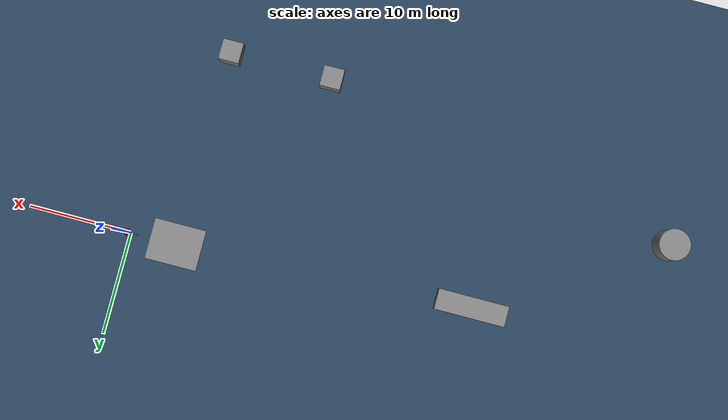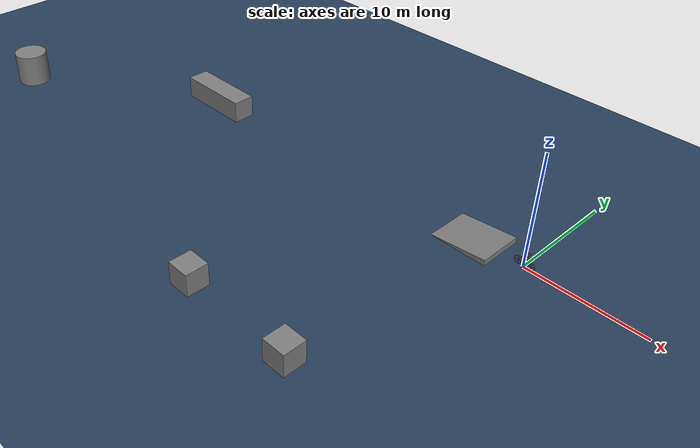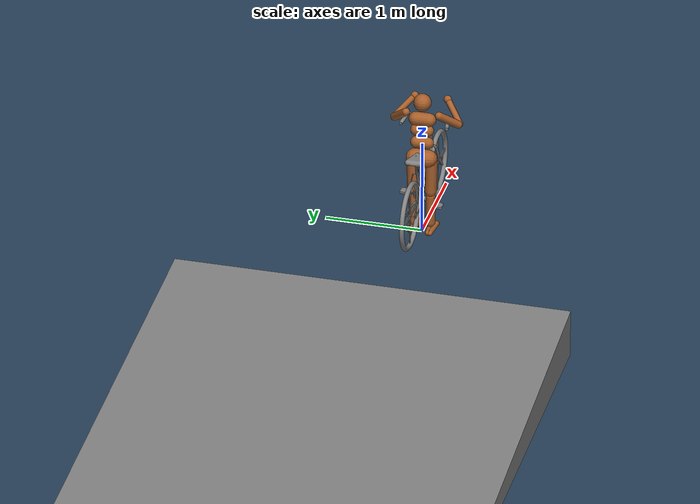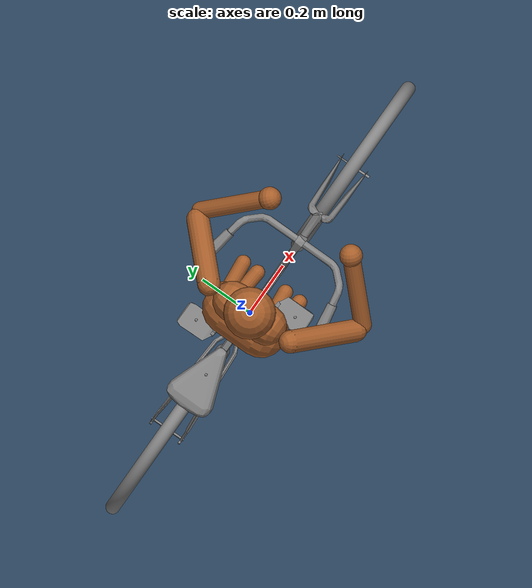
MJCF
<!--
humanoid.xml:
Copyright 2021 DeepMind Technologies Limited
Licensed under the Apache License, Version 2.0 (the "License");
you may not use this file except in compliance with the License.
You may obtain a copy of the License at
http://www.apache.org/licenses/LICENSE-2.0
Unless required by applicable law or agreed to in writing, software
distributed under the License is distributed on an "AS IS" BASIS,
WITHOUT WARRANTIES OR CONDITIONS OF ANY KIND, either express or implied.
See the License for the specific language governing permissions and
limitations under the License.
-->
<mujoco model="Bicycle Balance">
    <include file="../common.xml"/>
    <include file="plane.xml"/>
    <include file="bicycle.xml" />
    <include file="humanoid.xml"/>

    <option timestep="0.02"></option>

    <asset>
        <mesh file="terrain/ramp1.stl"/>
        <mesh file="terrain/square1.stl"/>
        <mesh file="terrain/square2.stl"/>
        <mesh file="terrain/large1.stl"/>
        <mesh file="terrain/round1.stl"/>
    </asset>

    <custom>
        <numeric name="agent_planner" data="0"/>
        <numeric name="agent_horizon" data="1.2"/>
        <numeric name="agent_timestep" data="0.02"/>
        <numeric name="sampling_sample_width" data="0.01"/>
        <numeric name="sampling_control_width" data="0.015"/>
        <numeric name="sampling_spline_points" data="3"/>
        <numeric name="sampling_exploration" data="0.05"/>
        <numeric name="gradient_spline_points" data="5"/>
        <!-- Parameters -->
        <numeric name="residual_Speed Goal" data="2.0 0 20"/>
    </custom>

    <worldbody>
        <geom type="mesh" mesh="ramp1"/>
        <geom type="mesh" mesh="square1"/>
        <geom type="mesh" mesh="square2"/>
        <geom type="mesh" mesh="large1"/>
        <geom type="mesh" mesh="round1"/>
    </worldbody>

    <sensor>
        <!-- Weights -->
        <user name="Action" dim="21" user="3 0.05 0.0 0.1 0.3" />
        <!-- StateGoal weights -->
        <!-- Path weights -->
        <user name="Path Position" dim="1" user="0 1.0 0 10.0"/>
        <user name="Path Velocity" dim="1" user="0 0.2 0 1.0"/>

        <!-- Trace -->
        <framepos name="trace0" objtype="site" objname="tip"/>

        <!-- Sensors -->
        <framelinvel name="frame_subtreelinvel" objtype="body" objname="bicycle"/>
        <framepos name="bicycle_pos" objtype="body" objname="bicycle"/>
        <framequat name="bicycle_quat" objtype="body" objname="bicycle"/>
        <framexaxis name="bicycle_xaxis" objtype="body" objname="bicycle"/>
        <frameyaxis name="bicycle_yaxis" objtype="body" objname="bicycle"/>
        <framezaxis name="bicycle_zaxis" objtype="body" objname="bicycle"/>

    </sensor>

    <contact>
        <exclude body1="steering" body2="lower_arm_right"/>
        <exclude body1="steering" body2="lower_arm_left"/>
        <exclude body1="steering" body2="hand_left"/>
        <exclude body1="steering" body2="hand_right"/>
        <exclude body1="crank" body2="foot_right"/>
        <exclude body1="crank" body2="foot_left"/>
        <exclude body1="crank" body2="shin_right"/>
        <exclude body1="crank" body2="shin_left"/>
        <exclude body1="foot_right" body2="bicycle"/>
        <exclude body1="foot_left" body2="bicycle"/>
        <exclude body1="foot_right" body2="pedal_right"/>
        <exclude body1="foot_left" body2="pedal_left"/>
        <exclude body1="pelvis" body2="bicycle"/>
    </contact>

    <equality>
        <connect site1="left_hand_site" site2="left_steering_site"/>
        <connect site1="right_hand_site" site2="right_steering_site"/>
        <weld site1="left_foot_site" site2="left_pedal_site" solimp="0.98 0.999 0.001 0.5 2"/>
        <weld site1="right_foot_site" site2="right_pedal_site" solimp="0.98 0.999 0.001 0.5 2"/>
        <connect site1="butt_site" site2="seat_site" solimp="0.95 0.99 0.001 0.5 2"/>
    </equality>

    <keyframe>
        <key name="home" qpos='0 0 0.5 1 0 0 0 0 0 0 1.5708 -1.5708 -1.5708 -0.25 0 1.5 1 0 0 0 0 -0.26 0 -0.083797 -0.0273915 -0.155307 -0.954859 -0.514893 0.08727 -0.083797 -0.0273915 -0.986095 -1.61942 -0.340353 0.008727 0.477525 -0.31974 -0.750274 0.477525 -0.31974 -0.750274'/>
        <key name="test" qpos='0 0 0.5 1 0 0 0 0 0 0 1.5708 -1.5708 -1.5708 -0.25 0 1.5 1 0 0 0 0 -0.26 0 -0.083797 -0.0273915 -0.155307 -0.954859 -0.514893 0.08727 -0.083797 -0.0273915 -0.986095 -1.61942 -0.340353 0.008727 0.477525 -0.31974 -0.750274 0.477525 -0.31974 -0.750274'/>
    </keyframe>

</mujoco>

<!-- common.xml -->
<mujoco>

    <visual>
        <headlight ambient=".4 .4 .4" diffuse=".8 .8 .8" specular="0.1 0.1 0.1"/>
        <map znear=".01"/>
        <quality shadowsize="2048"/>
        <global elevation="-15"/>
    </visual>

    <asset>
        <texture name="blue_grid" type="2d" builtin="checker" rgb1=".02 .14 .44" rgb2=".27 .55 1" width="300" height="300" mark="edge" markrgb="1 1 1"/>
        <material name="blue_grid" texture="blue_grid" texrepeat="1 1" texuniform="true" reflectance=".2"/>

        <texture name="grey_grid" type="2d" builtin="checker" rgb1=".26 .26 .26" rgb2=".6 .6 .6" width="300" height="300" mark="edge" markrgb="1 1 1"/>
        <material name="grey_grid" texture="grey_grid" texrepeat="1 1" texuniform="true" reflectance=".2"/>
        <texture name="skybox" type="skybox" builtin="gradient" rgb1=".66 .79 1" rgb2=".9 .91 .93" width="800" height="800"/>

        <material name="self" rgba=".7 .5 .3 1"/>
        <material name="self_default" rgba=".7 .5 .3 1"/>
        <material name="self_highlight" rgba="0 .5 .3 1"/>
        <material name="effector" rgba=".7 .4 .2 1"/>
        <material name="effector_default" rgba=".7 .4 .2 1"/>
        <material name="effector_highlight" rgba="0 .5 .3 1"/>
        <material name="decoration" rgba=".2 .6 .3 1"/>
        <material name="eye" rgba="0 .2 1 1"/>
        <material name="target" rgba=".6 .3 .3 1"/>
        <material name="target_default" rgba=".6 .3 .3 1"/>
        <material name="target_highlight" rgba=".6 .3 .3 .4"/>
        <material name="site" rgba=".5 .5 .5 .3"/>
    </asset>

    <size memory="1M"/>

    <statistic extent="0.4" center="0.3 0.1 0"/>

    <visual>
        <quality shadowsize="8192"/>
        <global azimuth="180" elevation="-30"/>
    </visual>

    <default>
        <geom friction="1.0"/>
    </default>

    <compiler angle="radian" autolimits="true"/>

    <asset>
        <mesh name="apple" file="../../shared_assets/apple/apple.obj" />
        <mesh name="apple_contact0" file="../../shared_assets/apple/contact0.stl"  />
        <mesh name="apple_contact1" file="../../shared_assets/apple/contact1.stl"  />

        <mesh name="doorknob" file="../../shared_assets/doorknob/doorknob.obj" />

        <mesh name="flashlight" file="../../shared_assets/flashlight/flashlight.obj" />
        <mesh name="flashlight_contact0" file="../../shared_assets/flashlight/contact0.stl"  />
        <mesh name="flashlight_contact1" file="../../shared_assets/flashlight/contact1.stl"  />

        <mesh name="hammer" file="../../shared_assets/hammer/hammer.obj" />
        <mesh name="hammer_contact0" file="../../shared_assets/hammer/contact0.stl"  />
        <mesh name="hammer_contact1" file="../../shared_assets/hammer/contact1.stl"  />

        <mesh name="phone" file="../../shared_assets/phone/phone.obj" />
        <mesh name="phone_contact0" file="../../shared_assets/phone/contact0.stl"  />
        <mesh name="phone_contact1" file="../../shared_assets/phone/contact1.stl"  />
        <mesh name="phone_contact2" file="../../shared_assets/phone/contact2.stl"  />

        <mesh name="stapler" file="../../shared_assets/stapler/stapler.obj" />
        <mesh name="stapler_contact0" file="../../shared_assets/stapler/contact0.stl"  />
        <mesh name="stapler_contact1" file="../../shared_assets/stapler/contact1.stl"  />
        <mesh name="stapler_contact2" file="../../shared_assets/stapler/contact2.stl"  />
        <mesh name="stapler_contact3" file="../../shared_assets/stapler/contact3.stl"  />
        <mesh name="stapler_contact4" file="../../shared_assets/stapler/contact4.stl"  />

        <mesh name="waterbottle" file="../../shared_assets/waterbottle/waterbottle.obj" />
        <mesh name="waterbottle_contact0" file="../../shared_assets/waterbottle/contact0.stl"  />
        <mesh name="waterbottle_contact1" file="../../shared_assets/waterbottle/contact1.stl"  />
    </asset>

</mujoco>

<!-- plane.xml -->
<mujoco>

    <asset>
        <texture name="grid" type="2d" builtin="checker" width="512" height="512" rgb1=".1 .2 .3" rgb2=".2 .3 .4"/>
        <material name="grid" texture="grid" texrepeat="1 1" texuniform="true" reflectance=".2"/>
   </asset>

    <worldbody>
        <geom type="plane" size="200 200 .01" material="grid"/>
        <!-- Ramp -->

    </worldbody>

</mujoco>

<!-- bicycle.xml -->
<mujoco>
    <compiler assetdir="assets"/>
    <statistic extent="5" />
    <visual>
        <quality shadowsize="8192"/>
        <global elevation="-30"/>
    </visual>

    <asset>
        <mesh file="frame.stl"/>
        <mesh file="steering.stl"/>
        <mesh file="seat.stl"/>
        <mesh file="crank.stl"/>
        <mesh file="pedal_left.stl"/>
        <mesh file="pedal_right.stl"/>
        <mesh file="front_wheel.stl"/>
        <mesh file="rear_wheel.stl"/>
        <mesh file="front_wheel_hub.stl"/>
        <mesh file="rear_wheel_hub.stl"/>
        <mesh file="left_handlebar.stl"/>
        <mesh file="right_handlebar.stl"/>
        <mesh file="left_handle.stl"/>
        <mesh file="right_handle.stl"/>
    </asset>

    <default>
    </default>

    <worldbody>
        <light name="sun" directional="true" pos="0 0 2" dir="0 0 -1"/>

        <!-- BICYCLE -->
        <camera name="float_far"  pos="-4 0 2" xyaxes="0 -1 0 .5 0 1" mode="trackcom" fovy="60"/>
        <body name="bicycle" pos="0 0 .5">
            <freejoint/>
            <site name="tip" pos="0 0 0.5"/>
            <site name="seat_site" pos="-0.26 0 0.5"/>
            <geom type="mesh" mesh="frame" mass="10"/>
            <geom type="mesh" mesh="seat" mass="1"/>

            <!-- STEERING -->
            <body name="steering">
                <joint type="hinge" name="steering_joint" axis="-0.11 0 0.24" pos="0.292836 0 0.512624" limited="true" range="-80 80"/>
                <geom type="mesh" mesh="steering" mass="2"/>
                <geom type="mesh" mesh="left_handlebar" mass="0.3"/>
                <geom type="mesh" mesh="right_handlebar" mass="0.3"/>
                <geom type="mesh" mesh="right_handle" mass="0.1"/>
                <geom type="mesh" mesh="left_handle" mass="0.1"/>

                <site name="right_steering_site" pos="0.11014 -0.22773 0.68226"/>
                <site name="left_steering_site" pos="0.11014 0.22773 0.68226"/>
                <!-- FRONT WHEEL -->
                <body name="front_wheel">
                    <joint type="hinge" name="front_wheel_joint" axis="0 1 0" pos="0.6217 0 -0.06129"/>
                    <geom type="mesh" mesh="front_wheel" condim="4" friction=".7" solimp=".9 .99 .003" solref=".015 1" mass="1.5"/>
                    <geom type="mesh" mesh="front_wheel_hub"/>
                </body>
            </body>

            <!-- REAR WHEEL -->
            <body name="rear_wheel">
                <joint type="hinge" name="rear_wheel_joint" axis="0 1 0" pos="-0.4937 0 -0.06129"/>
                <geom type="mesh" mesh="rear_wheel" condim="4" friction=".7" solimp=".9 .99 .003" solref=".015 1" mass="1.5"/>
                <geom type="mesh" mesh="rear_wheel_hub"/>
            </body>

            <!-- CRANK -->
            <body name="crank">
                <joint type="hinge" name="crank_joint" pos="-0.025658 0 -0.110423" axis="0 1 0"/>
                <geom type="mesh" mesh="crank" mass=".3"/>
                <body name="pedal_left">
                    <site name="left_pedal_site" pos="-0.12727 0.13729 0.048681"/>
                    <joint type="hinge" name="pedal_left_joint" pos="-0.129889 0.0573 0.009774" axis="0 1 0"/>
                    <geom type="mesh" mesh="pedal_left" mass="0.1"/>
                </body>
                <body name="pedal_right">
                    <site name="right_pedal_site" pos="0.077678 -0.13784 -0.19456"/>
                    <joint type="hinge" name="pedal_right_joint" pos="0.078673 -0.0573 -0.234007" axis="0 1 0"/>
                    <geom type="mesh" mesh="pedal_right" mass="0.1"/>
                </body>
            </body>

        </body>

    </worldbody>

    <equality>
        <!-- CHAIN DRIVE 2.75:1 -->
        <joint name="chain_drive" joint1="rear_wheel_joint" joint2="crank_joint" polycoef="0 2 0 0 0"/>
    </equality>

    <contact>
      <exclude body1="crank" body2="rear_wheel"/>
      <exclude body1="pedal_left" body2="rear_wheel"/>
      <exclude body1="pedal_right" body2="rear_wheel"/>

      <exclude body1="crank" body2="front_wheel"/>
      <exclude body1="pedal_left" body2="front_wheel"/>
      <exclude body1="pedal_right" body2="front_wheel"/>
      <exclude body1="bicycle" body2="front_wheel"/>

      <exclude body1="pedal_left" body2="bicycle"/>
      <exclude body1="pedal_right" body2="bicycle"/>
    </contact>

</mujoco>

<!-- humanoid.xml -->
<mujoco model="Humanoid">

  <asset>
    <texture type="skybox" builtin="gradient" rgb1=".3 .5 .7" rgb2="0 0 0" width="32" height="512"/>
    <texture name="body" type="cube" builtin="flat" mark="cross" width="128" height="128" rgb1="0.8 0.6 0.4" rgb2="0.8 0.6 0.4" markrgb="1 1 1"/>
    <material name="body" texture="body" texuniform="true" rgba="0.8 0.6 .4 1"/>
  </asset>

  <default>
    <motor ctrlrange="-1 1" ctrllimited="true"/>
    <default class="body">

      <!-- geoms -->
      <geom type="capsule" condim="1" friction=".7" solimp=".9 .99 .003" solref=".015 1" material="body" group="1"/>
      <default class="thigh">
        <geom size=".06"/>
      </default>
      <default class="shin">
        <geom fromto="0 0 0 0 0 -.3"  size=".049"/>
      </default>
      <default class="foot">
        <geom size=".027"/>
        <default class="foot1">
          <geom fromto="-.07 -.01 0 .14 -.03 0"/>
        </default>
        <default class="foot2">
          <geom fromto="-.07 .01 0 .14  .03 0"/>
        </default>
      </default>
      <default class="arm_upper">
        <geom size=".04"/>
      </default>
      <default class="arm_lower">
        <geom size=".031"/>
      </default>
      <default class="hand">
        <geom type="sphere" size=".04"/>
      </default>

      <!-- joints -->
      <joint type="hinge" damping=".2" stiffness="1" armature=".01" limited="true" solimplimit="0 .99 .01"/>
      <default class="joint_big">
        <joint damping="5" stiffness="10"/>
        <default class="hip_x">
          <joint range="-30 10"/>
        </default>
        <default class="hip_z">
          <joint range="-60 35"/>
        </default>
        <default class="hip_y">
          <joint axis="0 1 0" range="-150 20"/>
        </default>
        <default class="joint_big_stiff">
          <joint stiffness="20"/>
        </default>
      </default>
      <default class="knee">
        <joint pos="0 0 .02" axis="0 -1 0" range="-160 -30"/>
      </default>
      <default class="ankle">
        <joint range="-50 50"/>
        <default class="ankle_y">
          <joint pos="0 0 .08" axis="0 1 0" stiffness="6"/>
        </default>
        <default class="ankle_x">
          <joint pos="0 0 .04" stiffness="3"/>
        </default>
      </default>
      <default class="shoulder">
        <joint range="-85 60"/>
      </default>
      <default class="elbow">
        <joint range="-100 50" stiffness="0"/>
      </default>
    </default>
  </default>

  <worldbody>
    <body name="torso" pos="0 0 1.282" childclass="body">
      <camera name="back" pos="-3 0 1" xyaxes="0 -1 0 1 0 2" mode="trackcom"/>
      <camera name="side" pos="0 -3 1" xyaxes="1 0 0 0 1 2" mode="trackcom"/>
      <freejoint name="root"/>
      <geom name="torso" fromto="0 -.07 0 0 .07 0" size=".07"/>
      <geom name="waist_upper" fromto="-.01 -.06 -.12 -.01 .06 -.12" size=".06"/>
      <body name="head" pos="0 0 .19">
        <geom name="head" type="sphere" size=".09"/>
        <camera name="egocentric" pos=".09 0 0" xyaxes="0 -1 0 .1 0 1" fovy="80"/>
      </body>
      <body name="waist_lower" pos="-.01 0 -.26">
        <geom name="waist_lower" fromto="0 -.06 0 0 .06 0" size=".06"/>
        <joint name="abdomen_z" pos="0 0 .065" axis="0 0 1" range="-45 45" class="joint_big_stiff"/>
        <joint name="abdomen_y" pos="0 0 .065" axis="0 1 0" range="-75 30" class="joint_big"/>
        <body name="pelvis" pos="0 0 -.165">
          <site name="butt_site" pos="-0.05 0 -0.08"/>
          <joint name="abdomen_x" pos="0 0 .1" axis="1 0 0" range="-35 35" class="joint_big"/>
          <geom name="butt" fromto="-.02 -.07 0 -.02 .07 0" size=".09"/>
          <body name="thigh_right" pos="0 -.1 -.04">
            <joint name="hip_x_right" axis="1 0 0" class="hip_x"/>
            <joint name="hip_z_right" axis="0 0 1" class="hip_z"/>
            <joint name="hip_y_right" class="hip_y"/>
            <geom name="thigh_right" fromto="0 0 0 0 .01 -.34" class="thigh"/>
            <body name="shin_right" pos="0 .01 -.4">
              <joint name="knee_right" class="knee"/>
              <geom name="shin_right" class="shin"/>
              <body name="foot_right" pos="0 0 -.39">
                <site name="right_foot_site" pos="0.05 0 0"/>
                <joint name="ankle_y_right" class="ankle_y"/>
                <joint name="ankle_x_right" class="ankle_x" axis="1 0 .5"/>
                <geom name="foot1_right" class="foot1"/>
                <geom name="foot2_right" class="foot2"/>
              </body>
            </body>
          </body>
          <body name="thigh_left" pos="0 .1 -.04">
            <joint name="hip_x_left" axis="-1 0 0" class="hip_x"/>
            <joint name="hip_z_left" axis="0 0 -1" class="hip_z"/>
            <joint name="hip_y_left" class="hip_y"/>
            <geom name="thigh_left" fromto="0 0 0 0 -.01 -.34" class="thigh"/>
            <body name="shin_left" pos="0 -.01 -.4">
              <joint name="knee_left" class="knee"/>
              <geom name="shin_left" fromto="0 0 0 0 0 -.3" class="shin"/>
              <body name="foot_left" pos="0 0 -.39">
                <site name="left_foot_site" pos="0.05 0 0"/>
                <joint name="ankle_y_left" class="ankle_y"/>
                <joint name="ankle_x_left" class="ankle_x" axis="-1 0 -.5"/>
                <geom name="foot1_left" class="foot1"/>
                <geom name="foot2_left" class="foot2"/>
              </body>
            </body>
          </body>
        </body>
      </body>
      <body name="upper_arm_right" pos="0 -.17 .06">
        <joint name="shoulder1_right" axis="2 1 1"  class="shoulder"/>
        <joint name="shoulder2_right" axis="0 -1 1" class="shoulder"/>
        <geom name="upper_arm_right" fromto="0 0 0 .16 -.16 -.16" class="arm_upper"/>
        <body name="lower_arm_right" pos=".18 -.18 -.18">
          <joint name="elbow_right" axis="0 -1 1" class="elbow"/>
          <geom name="lower_arm_right" fromto=".01 .01 .01 .17 .17 .17" class="arm_lower"/>
          <body name="hand_right" pos=".18 .18 .18">
            <site name="right_hand_site"/>
            <geom name="hand_right" zaxis="1 1 1" class="hand"/>
          </body>
        </body>
      </body>
      <body name="upper_arm_left" pos="0 .17 .06">
        <joint name="shoulder1_left" axis="-2 1 -1" class="shoulder"/>
        <joint name="shoulder2_left" axis="0 -1 -1"  class="shoulder"/>
        <geom name="upper_arm_left" fromto="0 0 0 .16 .16 -.16" class="arm_upper"/>
        <body name="lower_arm_left" pos=".18 .18 -.18">
          <joint name="elbow_left" axis="0 -1 -1" class="elbow"/>
          <geom name="lower_arm_left" fromto=".01 -.01 .01 .17 -.17 .17" class="arm_lower"/>
          <body name="hand_left" pos=".18 -.18 .18">
            <site name="left_hand_site" />
            <geom name="hand_left" zaxis="1 -1 1" class="hand"/>
          </body>
        </body>
      </body>
    </body>
  </worldbody>

  <contact>
    <exclude body1="waist_lower" body2="thigh_right"/>
    <exclude body1="waist_lower" body2="thigh_left"/>
  </contact>

  <tendon>
    <fixed name="hamstring_right" limited="true" range="-0.3 2">
      <joint joint="hip_y_right" coef=".5"/>
      <joint joint="knee_right" coef="-.5"/>
    </fixed>
    <fixed name="hamstring_left" limited="true" range="-0.3 2">
      <joint joint="hip_y_left" coef=".5"/>
      <joint joint="knee_left" coef="-.5"/>
    </fixed>
  </tendon>

  <actuator>
    <motor name="abdomen_z"       gear="40"  joint="abdomen_z"/>
    <motor name="abdomen_y"       gear="40"  joint="abdomen_y"/>
    <motor name="abdomen_x"       gear="40"  joint="abdomen_x"/>
    <motor name="hip_x_right"     gear="40"  joint="hip_x_right"/>
    <motor name="hip_z_right"     gear="40"  joint="hip_z_right"/>
    <motor name="hip_y_right"     gear="120" joint="hip_y_right"/>
    <motor name="knee_right"      gear="80"  joint="knee_right"/>
    <motor name="ankle_y_right"   gear="20"  joint="ankle_y_right"/>
    <motor name="ankle_x_right"   gear="20"  joint="ankle_x_right"/>
    <motor name="hip_x_left"      gear="40"  joint="hip_x_left"/>
    <motor name="hip_z_left"      gear="40"  joint="hip_z_left"/>
    <motor name="hip_y_left"      gear="120" joint="hip_y_left"/>
    <motor name="knee_left"       gear="80"  joint="knee_left"/>
    <motor name="ankle_y_left"    gear="20"  joint="ankle_y_left"/>
    <motor name="ankle_x_left"    gear="20"  joint="ankle_x_left"/>
    <motor name="shoulder1_right" gear="20"  joint="shoulder1_right"/>
    <motor name="shoulder2_right" gear="20"  joint="shoulder2_right"/>
    <motor name="elbow_right"     gear="40"  joint="elbow_right"/>
    <motor name="shoulder1_left"  gear="20"  joint="shoulder1_left"/>
    <motor name="shoulder2_left"  gear="20"  joint="shoulder2_left"/>
    <motor name="elbow_left"      gear="40"  joint="elbow_left"/>
  </actuator>

</mujoco>
